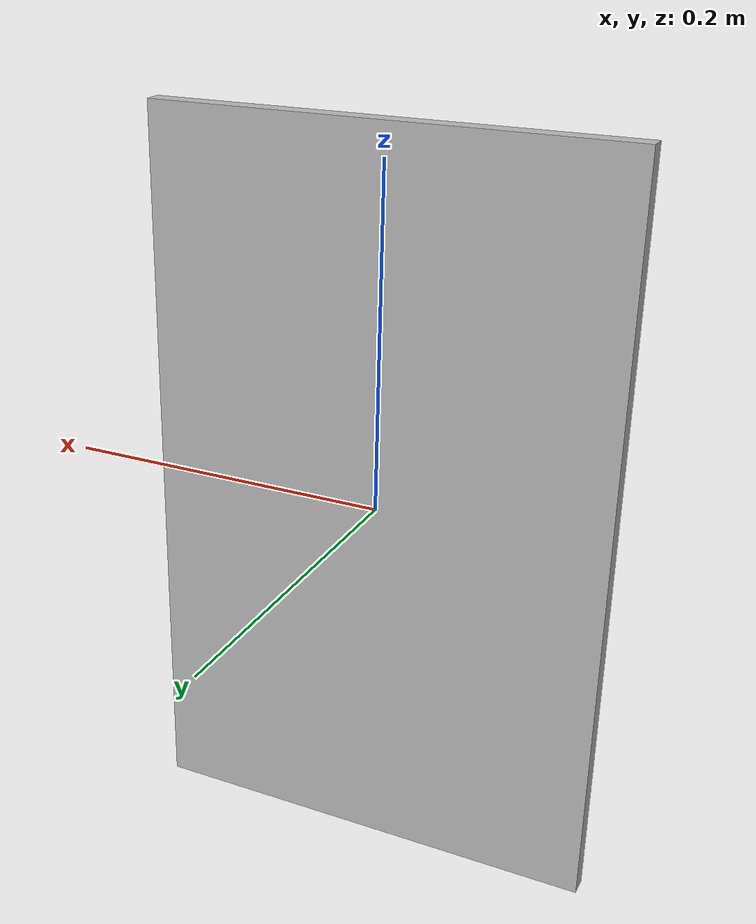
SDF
<?xml version="1.0" ?>
<sdf version="1.5">
  <model name="Sheep">
    <static>true</static>
    <link name="link">
      <pose>0 0 0 0 0 0</pose>
      <collision name="collision">
        <geometry>
          <box>
            <size>.278 0.011 .44</size>
          </box>
        </geometry>
      </collision>
      <visual name="visual">
        <cast_shadows>false</cast_shadows>
        <geometry>
          <box>
            <size>.278 0.011 .44</size>
          </box>
        </geometry>
        <material>
          <script>
            <uri>model://Sheep/materials/scripts</uri>
            <uri>model://Sheep/materials/textures</uri>
            <name>vrc/Sheep</name>
          </script>
        </material>
      </visual>
    </link>
  </model>
</sdf>
